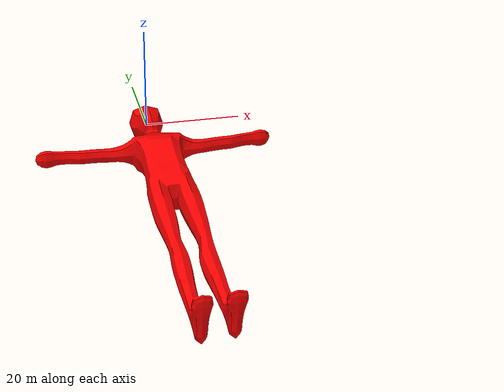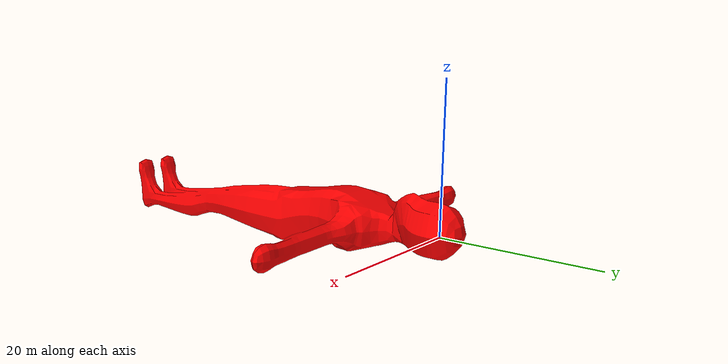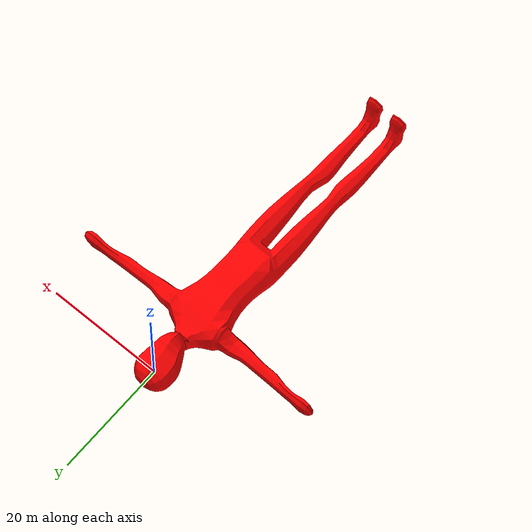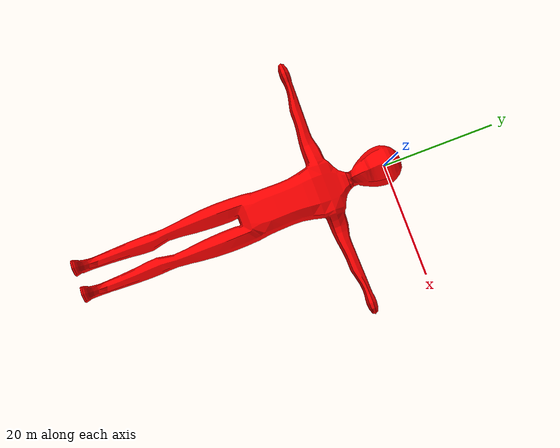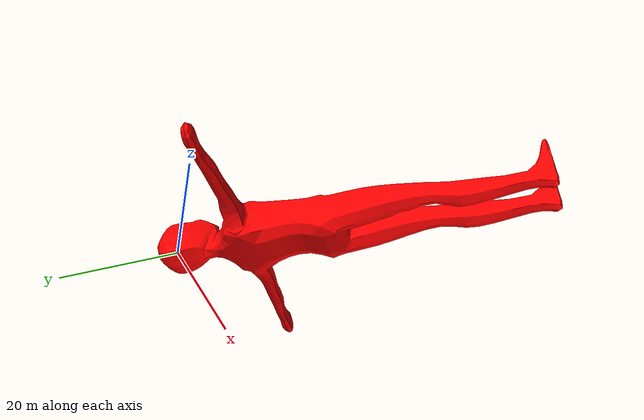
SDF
<?xml version='1.0'?>
<sdf version='1.4'>
  <model name="techtrix_worker">
  	<static>false</static>

  	<!-- We simply show the model, and for now we do not include any collisions -->
	<link name='cylinder_main'>
		<inertial>
			<pose>0 0 0 0 0 0</pose>
			<mass>25</mass>
			<inertia>
				<ixx>1</ixx>
				<ixy>0</ixy>
				<ixz>0</ixz>
				<iyy>1</iyy>
				<iyz>0</iyz>
				<izz>1</izz>
			</inertia>
    	</inertial>

		<collision name='collision'>
			<pose>0 0 0 0 0 0</pose>
			<geometry>
				<box>
					<size>0.5 0.5 1.5</size>
				</box>
			</geometry>
		</collision>

		<visual name='visual'>
			<pose>0 0 0.66 0 0 0</pose>
			<geometry>
				<mesh>
					<uri>model://techtrix_worker/meshes/model.dae</uri>
				</mesh>
			</geometry>

			<!-- The worker must be detected by the thermal sensor -->
			<material>
				<ambient>1 0 0 1</ambient>
				<emissive>1 0 0 1</emissive>
			</material>

		</visual>
	</link>
  </model>
</sdf>
